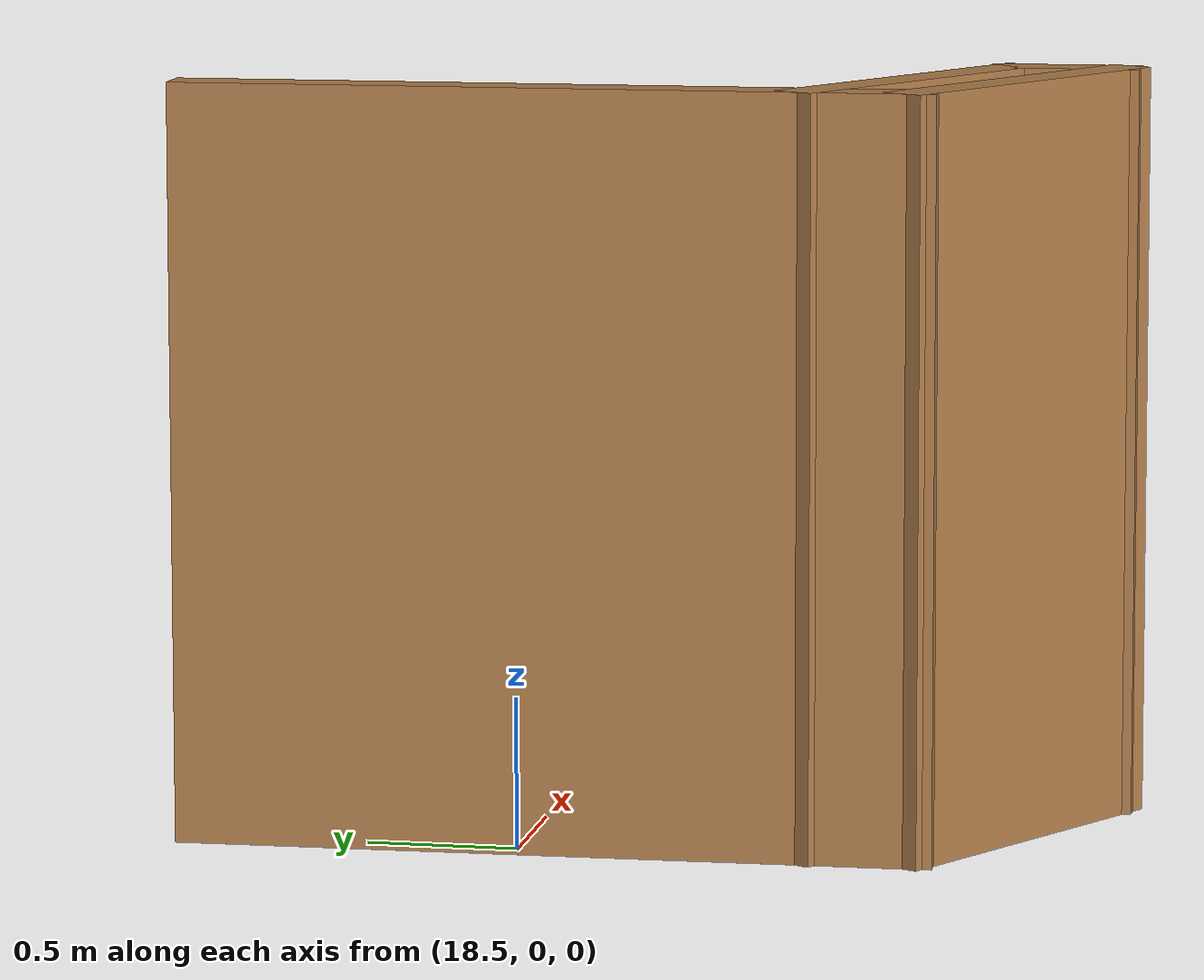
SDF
<?xml version='1.0'?>
<sdf version='1.7'>
  <model name='galatamuseo'>
    <pose>9.77148 -0.4108 0 0 -0 0</pose>
    <link name='Wall_106'>
      <collision name='Wall_106_Collision'>
        <geometry>
          <box>
            <size>2.5 0.15 2.5</size>
          </box>
        </geometry>
        <pose>0 0 1.25 0 -0 0</pose>
      </collision>
      <visual name='Wall_106_Visual'>
        <pose>0 0 1.25 0 -0 0</pose>
        <geometry>
          <box>
            <size>2.5 0.15 2.5</size>
          </box>
        </geometry>
        <material>
          <script>
            <uri>file://media/materials/scripts/gazebo.material</uri>
            <name>Gazebo/Wood</name>
          </script>
          <ambient>1 1 1 1</ambient>
        </material>
        <meta>
          <layer>0</layer>
        </meta>
      </visual>
      <pose>8.7164 0.288726 0 0 -0 -1.5708</pose>
    </link>
    <link name='Wall_107'>
      <collision name='Wall_107_Collision'>
        <geometry>
          <box>
            <size>1.25 0.15 2.5</size>
          </box>
        </geometry>
        <pose>0 0 1.25 0 -0 0</pose>
      </collision>
      <visual name='Wall_107_Visual'>
        <pose>0 0 1.25 0 -0 0</pose>
        <geometry>
          <box>
            <size>1.25 0.15 2.5</size>
          </box>
        </geometry>
        <material>
          <script>
            <uri>file://media/materials/scripts/gazebo.material</uri>
            <name>Gazebo/Wood</name>
          </script>
          <ambient>1 1 1 1</ambient>
        </material>
        <meta>
          <layer>0</layer>
        </meta>
      </visual>
      <pose>9.19272 -1.16127 0 0 -0 -0.523599</pose>
    </link>
    <link name='Wall_108'>
      <collision name='Wall_108_Collision'>
        <geometry>
          <box>
            <size>0.5 0.15 2.5</size>
          </box>
        </geometry>
        <pose>0 0 1.25 0 -0 0</pose>
      </collision>
      <visual name='Wall_108_Visual'>
        <pose>0 0 1.25 0 -0 0</pose>
        <geometry>
          <box>
            <size>0.5 0.15 2.5</size>
          </box>
        </geometry>
        <material>
          <script>
            <uri>file://media/materials/scripts/gazebo.material</uri>
            <name>Gazebo/Wood</name>
          </script>
          <ambient>1 1 1 1</ambient>
        </material>
        <meta>
          <layer>0</layer>
        </meta>
      </visual>
      <pose>9.66903 -1.26127 0 0 -0 1.5708</pose>
    </link>
    <link name='Wall_109'>
      <collision name='Wall_109_Collision'>
        <geometry>
          <box>
            <size>1.25 0.15 2.5</size>
          </box>
        </geometry>
        <pose>0 0 1.25 0 -0 0</pose>
      </collision>
      <visual name='Wall_109_Visual'>
        <pose>0 0 1.25 0 -0 0</pose>
        <geometry>
          <box>
            <size>1.25 0.15 2.5</size>
          </box>
        </geometry>
        <material>
          <script>
            <uri>file://media/materials/scripts/gazebo.material</uri>
            <name>Gazebo/Wood</name>
          </script>
          <ambient>1 1 1 1</ambient>
        </material>
        <meta>
          <layer>0</layer>
        </meta>
      </visual>
      <pose>9.19272 -0.811274 0 0 -0 2.61799</pose>
    </link>
    <static>1</static>
  </model>
</sdf>
